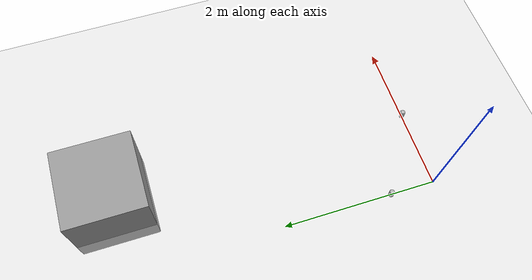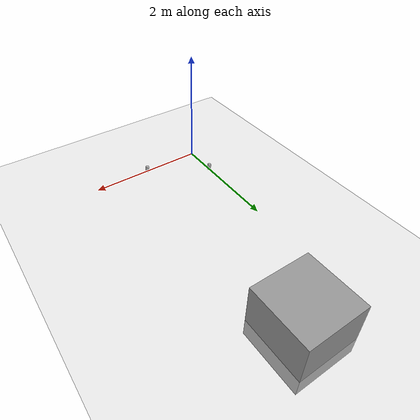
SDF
<sdf version="1.4">
 <world name="default">
  <light name="sun" type="directional">
   <pose>0 0 10 0 -0 0</pose>
   <diffuse>0.8 0.8 0.8 1</diffuse>
   <specular>0.2 0.2 0.2 1</specular>
   <attenuation>
    <range>1000</range>
    <constant>0.9</constant>
    <linear>0.01</linear>
    <quadratic>0.001</quadratic>
   </attenuation>
   <direction>-0.5 0.1 -0.9</direction>
  </light>
  <model name="ground_plane">
   <static>1</static>
   <link name="link">
    <collision name="collision">
     <geometry><plane><normal>0 0 1</normal><size>100 100</size></plane></geometry>
     <surface><friction><ode><mu>100</mu><mu2>50</mu2></ode></friction></surface>
    </collision>
    <visual name="visual">
     <cast_shadows>0</cast_shadows>
     <geometry><plane><normal>0 0 1</normal><size>100 100</size></plane></geometry>
     <material>
      <script><uri>file://media/materials/scripts/gazebo.material</uri><name>Gazebo/Grey</name></script>
     </material>
    </visual>
    <velocity_decay><linear>0</linear><angular>0</angular></velocity_decay>
   </link>
  </model>
  <physics type="ode">
   <max_step_size>0.001</max_step_size>
   <real_time_factor>1</real_time_factor>
   <real_time_update_rate>1000</real_time_update_rate>
   <gravity>0 0 -9.8</gravity>
  </physics>
  <scene><ambient>0.4 0.4 0.4 1</ambient><background>0.7 0.7 0.7 1</background><shadows>1</shadows></scene>
  <spherical_coordinates>
   <surface_model>EARTH_WGS84</surface_model>
   <latitude_deg>0</latitude_deg>
   <longitude_deg>0</longitude_deg>
   <elevation>0</elevation>
   <heading_deg>0</heading_deg>
  </spherical_coordinates>
  <model name="coke_can">
   <link name="link">
    <inertial>
     <pose>0 0 0.06 0 -0 0</pose>
     <mass>0.39</mass>
     <inertia>
      <ixx>0.00055575</ixx>
      <ixy>0</ixy>
      <ixz>0</ixz>
      <iyy>0.00055575</iyy>
      <iyz>0</iyz>
      <izz>0.0001755</izz>
     </inertia>
    </inertial>
    <collision name="collision">
     <pose>0.003937 0.0047244 -0.18 0 -0 0</pose>
     <geometry><mesh><uri>model://coke_can/meshes/coke_can.dae</uri></mesh></geometry>
     <surface>
      <friction><ode><mu>1</mu><mu2>1</mu2></ode></friction>
      <contact><ode><kp>1e+07</kp><kd>1</kd><min_depth>0.001</min_depth><max_vel>0.1</max_vel></ode></contact>
     </surface>
    </collision>
    <visual name="visual">
     <pose>0.003937 0.0047244 -0.18 0 -0 0</pose>
     <geometry><mesh><uri>model://coke_can/meshes/coke_can.dae</uri></mesh></geometry>
    </visual>
    <velocity_decay><linear>0</linear><angular>0</angular></velocity_decay>
   </link>
   <pose>1.00001 -0.000161 -0.002854 -0.064234 -0.003008 -0.000569</pose>
   <static>0</static>
  </model>
  <model name="coke_can_0">
   <link name="link">
    <inertial>
     <pose>0 0 0.06 0 -0 0</pose>
     <mass>0.39</mass>
     <inertia>
      <ixx>0.00055575</ixx>
      <ixy>0</ixy>
      <ixz>0</ixz>
      <iyy>0.00055575</iyy>
      <iyz>0</iyz>
      <izz>0.0001755</izz>
     </inertia>
    </inertial>
    <collision name="collision">
     <pose>0.003937 0.0047244 -0.18 0 -0 0</pose>
     <geometry><mesh><uri>model://coke_can/meshes/coke_can.dae</uri></mesh></geometry>
     <surface>
      <friction><ode><mu>1</mu><mu2>1</mu2></ode></friction>
      <contact><ode><kp>1e+07</kp><kd>1</kd><min_depth>0.001</min_depth><max_vel>0.1</max_vel></ode></contact>
     </surface>
    </collision>
    <visual name="visual">
     <pose>0.003937 0.0047244 -0.18 0 -0 0</pose>
     <geometry><mesh><uri>model://coke_can/meshes/coke_can.dae</uri></mesh></geometry>
    </visual>
    <velocity_decay><linear>0</linear><angular>0</angular></velocity_decay>
   </link>
   <pose>1e-06 0.588611 -0.00281 -0.064303 -0.000297 -0.000574</pose>
   <static>0</static>
  </model>
  <model name="unit_box_1">
   <pose>1.00003 4 0.181137 0 0 -2e-06</pose>
   <link name="link">
    <inertial>
     <mass>1</mass>
     <inertia><ixx>1</ixx><ixy>0</ixy><ixz>0</ixz><iyy>1</iyy><iyz>0</iyz><izz>1</izz></inertia>
    </inertial>
    <collision name="collision"><geometry><box><size>5.14517 0.279035 0.362273</size></box></geometry></collision>
    <visual name="visual">
     <geometry><box><size>1 1 1</size></box></geometry>
     <material>
      <script><uri>file://media/materials/scripts/gazebo.material</uri><name>Gazebo/Grey</name></script>
     </material>
    </visual>
    <velocity_decay><linear>0</linear><angular>0</angular></velocity_decay>
   </link>
   <static>0</static>
  </model>
 </world>
</sdf>
